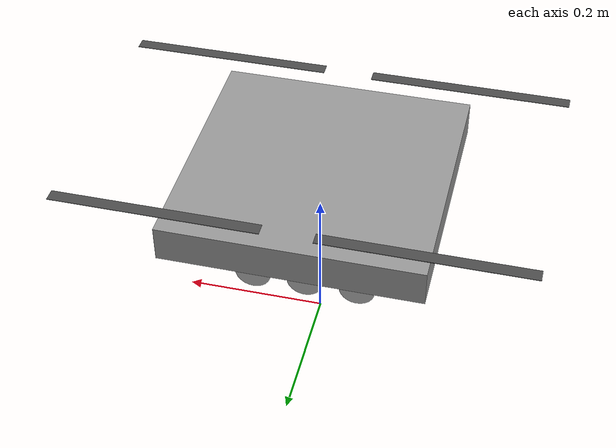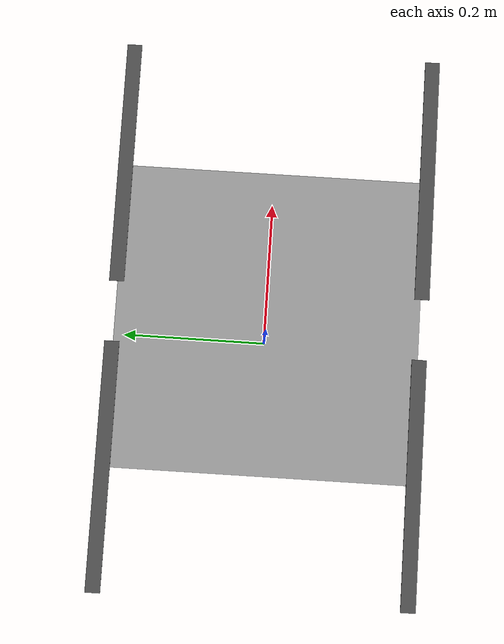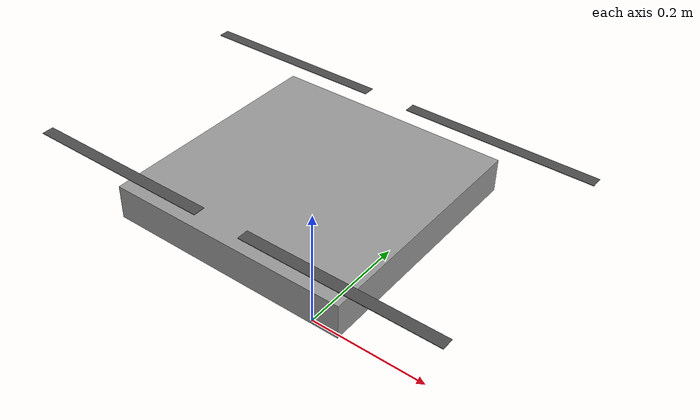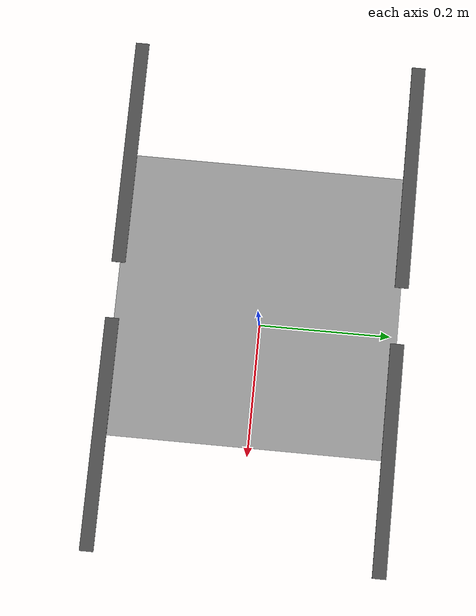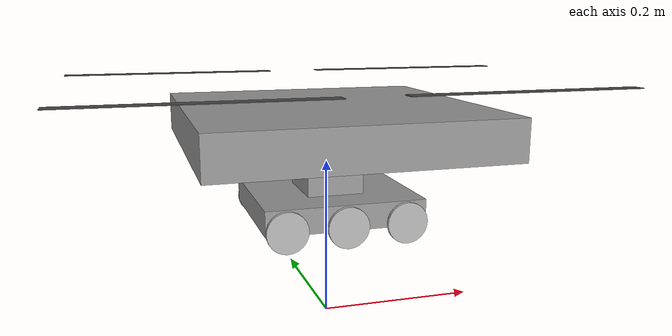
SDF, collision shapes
<?xml version="1.0" encoding="UTF-8"?>
<sdf version='1.9'>
  <model name='x500_custom'>
    <include merge='true'>
      <uri>model://x500_base_custom</uri>
    </include>
    <plugin filename="gz-sim-multicopter-motor-model-system"
      name="gz::sim::systems::MulticopterMotorModel">
      <jointName>rotor_0_joint</jointName>
      <linkName>rotor_0</linkName>
      <turningDirection>ccw</turningDirection>
      <timeConstantUp>0.0125</timeConstantUp>
      <timeConstantDown>0.025</timeConstantDown>
      <maxRotVelocity>1000.0</maxRotVelocity>
      <motorConstant>8.54858e-06</motorConstant>
      <momentConstant>0.016</momentConstant>
      <commandSubTopic>command/motor_speed</commandSubTopic>
      <motorNumber>0</motorNumber>
      <rotorDragCoefficient>8.06428e-05</rotorDragCoefficient>
      <rollingMomentCoefficient>1e-06</rollingMomentCoefficient>
      <rotorVelocitySlowdownSim>10</rotorVelocitySlowdownSim>
      <motorType>velocity</motorType>
    </plugin>
    <plugin filename="gz-sim-multicopter-motor-model-system"
      name="gz::sim::systems::MulticopterMotorModel">
      <jointName>rotor_1_joint</jointName>
      <linkName>rotor_1</linkName>
      <turningDirection>ccw</turningDirection>
      <timeConstantUp>0.0125</timeConstantUp>
      <timeConstantDown>0.025</timeConstantDown>
      <maxRotVelocity>1000.0</maxRotVelocity>
      <motorConstant>8.54858e-06</motorConstant>
      <momentConstant>0.016</momentConstant>
      <commandSubTopic>command/motor_speed</commandSubTopic>
      <motorNumber>1</motorNumber>
      <rotorDragCoefficient>8.06428e-05</rotorDragCoefficient>
      <rollingMomentCoefficient>1e-06</rollingMomentCoefficient>
      <rotorVelocitySlowdownSim>10</rotorVelocitySlowdownSim>
      <motorType>velocity</motorType>
    </plugin>
    <plugin filename="gz-sim-multicopter-motor-model-system"
      name="gz::sim::systems::MulticopterMotorModel">
      <jointName>rotor_2_joint</jointName>
      <linkName>rotor_2</linkName>
      <turningDirection>cw</turningDirection>
      <timeConstantUp>0.0125</timeConstantUp>
      <timeConstantDown>0.025</timeConstantDown>
      <maxRotVelocity>1000.0</maxRotVelocity>
      <motorConstant>8.54858e-06</motorConstant>
      <momentConstant>0.016</momentConstant>
      <commandSubTopic>command/motor_speed</commandSubTopic>
      <motorNumber>2</motorNumber>
      <rotorDragCoefficient>8.06428e-05</rotorDragCoefficient>
      <rollingMomentCoefficient>1e-06</rollingMomentCoefficient>
      <rotorVelocitySlowdownSim>10</rotorVelocitySlowdownSim>
      <motorType>velocity</motorType>
    </plugin>
    <plugin filename="gz-sim-multicopter-motor-model-system"
      name="gz::sim::systems::MulticopterMotorModel">
      <jointName>rotor_3_joint</jointName>
      <linkName>rotor_3</linkName>
      <turningDirection>cw</turningDirection>
      <timeConstantUp>0.0125</timeConstantUp>
      <timeConstantDown>0.025</timeConstantDown>
      <maxRotVelocity>1000.0</maxRotVelocity>
      <motorConstant>8.54858e-06</motorConstant>
      <momentConstant>0.016</momentConstant>
      <commandSubTopic>command/motor_speed</commandSubTopic>
      <motorNumber>3</motorNumber>
      <rotorDragCoefficient>8.06428e-05</rotorDragCoefficient>
      <rollingMomentCoefficient>1e-06</rollingMomentCoefficient>
      <rotorVelocitySlowdownSim>10</rotorVelocitySlowdownSim>
      <motorType>velocity</motorType>
    </plugin>
  </model>
</sdf>

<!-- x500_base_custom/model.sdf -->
<sdf version='1.9'>
  <model name='x500_base_custom'>
    <pose>0 0 .24 0 0 0</pose>
    <self_collide>false</self_collide>
    <static>false</static>
    <link name="base_link">
      <inertial>
        <mass>2.0</mass>
        <inertia>
          <ixx>0.02166666666666667</ixx>
          <ixy>0</ixy>
          <ixz>0</ixz>
          <iyy>0.02166666666666667</iyy>
          <iyz>0</iyz>
          <izz>0.04000000000000001</izz>
        </inertia>
      </inertial>
      <gravity>true</gravity>
      <velocity_decay />
      <visual name="base_link_visual">
        <pose>0.21 -0.21 -0.133 0 0 1.570796327</pose>
        <geometry>
          <mesh>
            <scale>1 1 1</scale>
            <uri>model://x500_base_custom/meshes/Holybro_X500_V2_UPbattery.STL</uri>
          </mesh>
        </geometry>
        <material>
          <script>
            <uri>file://media/materials/scripts/gazebo.material</uri>
            <name>Gazebo/Grey</name>
          </script>
        </material>
      </visual>
      <visual name="5010_motor_base_0">
        <pose>0.174 0.174 .032 0 0 -.45</pose>
        <geometry>
          <mesh>
            <scale>1 1 1</scale>
            <uri>model://x500_base_custom/meshes/5010Base.dae</uri>
          </mesh>
        </geometry>
      </visual>
      <visual name="5010_motor_base_1">
        <pose>-0.174 0.174 .032 0 0 -.45</pose>
        <geometry>
          <mesh>
            <scale>1 1 1</scale>
            <uri>model://x500_base_custom/meshes/5010Base.dae</uri>
          </mesh>
        </geometry>
      </visual>
      <visual name="5010_motor_base_2">
        <pose>0.174 -0.174 .032 0 0 -.45</pose>
        <geometry>
          <mesh>
            <scale>1 1 1</scale>
            <uri>model://x500_base_custom/meshes/5010Base.dae</uri>
          </mesh>
        </geometry>
      </visual>
      <visual name="5010_motor_base_3">
        <pose>-0.174 -0.174 .032 0 0 -.45</pose>
        <geometry>
          <mesh>
            <scale>1 1 1</scale>
            <uri>model://x500_base_custom/meshes/5010Base.dae</uri>
          </mesh>
        </geometry>
      </visual>
      <visual name="NXP_FMUK66_FRONT">
        <pose>0.047 .001 .043 1 0 1.57</pose>
        <cast_shadows>false</cast_shadows>
        <geometry>
          <plane>
            <normal>0 0 1</normal>
            <size>.013 .007</size>
          </plane>
        </geometry>
        <material>
          <diffuse>1.0 1.0 1.0</diffuse>
          <specular>1.0 1.0 1.0</specular>
          <pbr>
            <metal>
              <albedo_map>model://x500_base_custom/materials/textures/nxp.png</albedo_map>
            </metal>
          </pbr>
        </material>
      </visual>
      <visual name="NXP_FMUK66_TOP">
        <pose>-0.023 0 .0515 0 0 -1.57</pose>
        <cast_shadows>false</cast_shadows>
        <geometry>
          <plane>
            <normal>0 0 1</normal>
            <size>.013 .007</size>
          </plane>
        </geometry>
        <material>
          <diffuse>1.0 1.0 1.0</diffuse>
          <specular>1.0 1.0 1.0</specular>
          <pbr>
            <metal>
              <albedo_map>model://x500_base_custom/materials/textures/nxp.png</albedo_map>
            </metal>
          </pbr>
        </material>
      </visual>
      <visual name="RDDRONE_FMUK66_TOP">
        <pose>-.03 0 .0515 0 0 -1.57</pose>
        <cast_shadows>false</cast_shadows>
        <geometry>
          <plane>
            <normal>0 0 1</normal>
            <size>.032 .0034</size>
          </plane>
        </geometry>
        <material>
          <diffuse>1.0 1.0 1.0</diffuse>
          <specular>1.0 1.0 1.0</specular>
          <pbr>
            <metal>
              <albedo_map>model://x500_base_custom/materials/textures/rd.png</albedo_map>
            </metal>
          </pbr>
        </material>
      </visual>
      <collision name="base_link_collision_0">
        <pose>0 0 .007 0 0 0</pose>
        <geometry>
          <box>
            <size>0.35355339059327373 0.35355339059327373 0.05</size>
          </box>
        </geometry>
        <surface>
          <contact>
            <ode>
              <min_depth>0.001</min_depth>
              <max_vel>0</max_vel>
            </ode>
          </contact>
          <friction>
            <ode />
          </friction>
        </surface>
      </collision>
      <collision name="base_link_collision_1">
          <pose>0 0 -0.0465 0 0 0</pose>
          <geometry>
            <box>
              <size>0.07 0.08 0.057</size>
            </box>
          </geometry>
          <surface>
            <contact>
              <ode>
                <min_depth>0.001</min_depth>
                <max_vel>0</max_vel>
              </ode>
            </contact>
            <friction>
              <ode />
            </friction>
          </surface>
        </collision>
        <collision name="base_link_collision_2">
          <pose>0 0 -0.0905 0 0 0</pose>
          <geometry>
            <box>
              <size>0.196 0.175 0.031</size>
            </box>
          </geometry>
          <surface>
            <contact>
              <ode>
                <min_depth>0.001</min_depth>
                <max_vel>0</max_vel>
              </ode>
            </contact>
            <friction>
              <ode />
            </friction>
          </surface>
        </collision>
      <sensor name="air_pressure_sensor" type="air_pressure">
        <gz_frame_id>base_link</gz_frame_id>
        <always_on>1</always_on>
        <update_rate>50</update_rate>
        <air_pressure>
          <!-- Noise modeled after BMP390 -->
          <pressure>
            <noise type="gaussian">
              <mean>0</mean>
              <stddev>3</stddev>
            </noise>
          </pressure>
        </air_pressure>
      </sensor>
      <sensor name="magnetometer_sensor" type="magnetometer">
        <gz_frame_id>base_link</gz_frame_id>
        <always_on>1</always_on>
        <update_rate>100</update_rate>
        <magnetometer>
          <!-- TODO: update to fix units and coordinate system when we move past Harmonic -->
          <!-- See https://github.com/gazebosim/gz-sim/pull/2460 -->
          <!-- 3mgauss RMS: NOTE: noise is in tesla but sensor reports data in gauss -->
          <!-- Noise modeled after IIS2MDC -->
          <x>
            <noise type="gaussian">
              <stddev>0.0001</stddev>
            </noise>
          </x>
          <y>
            <noise type="gaussian">
              <stddev>0.0001</stddev>
            </noise>
          </y>
          <z>
            <noise type="gaussian">
              <stddev>0.0001</stddev>
            </noise>
          </z>
        </magnetometer>
      </sensor>
      <sensor name="imu_sensor" type="imu">
        <gz_frame_id>base_link</gz_frame_id>
        <always_on>1</always_on>
        <update_rate>250</update_rate>
        <imu>
          <angular_velocity>
            <!-- Noise modeled after IIM42653 -->
            <!-- 0.05 deg/s converted to rad/s -->
            <x>
              <noise type="gaussian">
                <mean>0.0</mean>
                <stddev>0.0008726646</stddev>
              </noise>
            </x>
            <y>
              <noise type="gaussian">
                <mean>0.0</mean>
                <stddev>0.0008726646</stddev>
              </noise>
            </y>
            <z>
              <noise type="gaussian">
                <mean>0.0</mean>
                <stddev>0.0008726646</stddev>
              </noise>
            </z>
          </angular_velocity>
          <linear_acceleration>
            <!-- Noise modeled after IIM42653 -->
            <!-- X & Y axis: 0.65 mg-rms converted to m/ss -->
            <x>
              <noise type="gaussian">
                <mean>0.0</mean>
                <stddev>0.00637</stddev>
              </noise>
            </x>
            <y>
              <noise type="gaussian">
                <mean>0.0</mean>
                <stddev>0.00637</stddev>
              </noise>
            </y>
            <!-- Z axis: 0.70 mg-rms converted to m/ss-->
            <z>
              <noise type="gaussian">
                <mean>0.0</mean>
                <stddev>0.00686</stddev>
              </noise>
            </z>
          </linear_acceleration>
        </imu>
      </sensor>
      <sensor name="navsat_sensor" type="navsat">
        <gz_frame_id>base_link</gz_frame_id>
        <always_on>1</always_on>
        <update_rate>30</update_rate>
      </sensor>
    </link>
    <link name="rotor_0">
      <gravity>true</gravity>
      <self_collide>false</self_collide>
      <velocity_decay />
      <pose>0.174 -0.174 0.06 0 0 0</pose>
      <inertial>
        <mass>0.016076923076923075</mass>
        <inertia>
          <ixx>3.8464910483993325e-07</ixx>
          <iyy>2.6115851691700804e-05</iyy>
          <izz>2.649858234714004e-05</izz>
        </inertia>
      </inertial>
      <visual name="rotor_0_visual">
        <pose>-0.022 -0.14638461538461536 -0.016 0 0 0</pose>
        <geometry>
          <mesh>
            <scale>0.8461538461538461 0.8461538461538461 0.8461538461538461</scale>
            <uri>model://x500_base_custom/meshes/1345_prop_ccw.stl</uri>
          </mesh>
        </geometry>
        <material>
          <script>
            <name>Gazebo/DarkGrey</name>
            <uri>file://media/materials/scripts/gazebo.material</uri>
          </script>
        </material>
      </visual>
      <visual name="rotor_0_visual_motor_bell">
        <pose>0 0 -.032 0 0 0</pose>
        <geometry>
          <mesh>
            <scale>1 1 1</scale>
            <uri>model://x500_base_custom/meshes/5010Bell.dae</uri>
          </mesh>
        </geometry>
      </visual>
      <collision name="rotor_0_collision">
        <pose>0 0 0 0 0 0 </pose>
        <geometry>
          <box>
            <size>0.2792307692307692 0.016923076923076923 0.0008461538461538462</size>
          </box>
        </geometry>
        <surface>
          <contact>
            <ode>
              <min_depth>0.001</min_depth>
              <max_vel>0</max_vel>
            </ode>
          </contact>
          <friction>
            <ode />
          </friction>
        </surface>
      </collision>
    </link>
    <joint name="rotor_0_joint" type="revolute">
      <parent>base_link</parent>
      <child>rotor_0</child>
      <axis>
        <xyz>0 0 1</xyz>
        <limit>
          <lower>-1e+16</lower>
          <upper>1e+16</upper>
        </limit>
        <dynamics>
          <spring_reference>0</spring_reference>
          <spring_stiffness>0</spring_stiffness>
        </dynamics>
      </axis>
    </joint>
    <link name="rotor_1">
      <gravity>true</gravity>
      <self_collide>false</self_collide>
      <velocity_decay />
      <pose>-0.174 0.174 0.06 0 0 0</pose>
      <inertial>
        <mass>0.016076923076923075</mass>
        <inertia>
          <ixx>3.8464910483993325e-07</ixx>
          <iyy>2.6115851691700804e-05</iyy>
          <izz>2.649858234714004e-05</izz>
        </inertia>
      </inertial>
      <visual name="rotor_1_visual">
        <pose>-0.022 -0.14638461538461536 -0.016 0 0 0</pose>
        <geometry>
          <mesh>
            <scale>0.8461538461538461 0.8461538461538461 0.8461538461538461</scale>
            <uri>model://x500_base_custom/meshes/1345_prop_ccw.stl</uri>
          </mesh>
        </geometry>
        <material>
          <script>
            <name>Gazebo/DarkGrey</name>
            <uri>file://media/materials/scripts/gazebo.material</uri>
          </script>
        </material>
      </visual>
      <visual name="rotor_1_visual_motor_top">
        <pose>0 0 -.032 0 0 0</pose>
        <geometry>
          <mesh>
            <scale>1 1 1</scale>
            <uri>model://x500_base_custom/meshes/5010Bell.dae</uri>
          </mesh>
        </geometry>
      </visual>
      <collision name="rotor_1_collision">
        <pose>0 0 0 0 0 0 </pose>
        <geometry>
          <box>
            <size>0.2792307692307692 0.016923076923076923 0.0008461538461538462</size>
          </box>
        </geometry>
        <surface>
          <contact>
            <ode>
              <min_depth>0.001</min_depth>
              <max_vel>0</max_vel>
            </ode>
          </contact>
          <friction>
            <ode />
          </friction>
        </surface>
      </collision>
    </link>
    <joint name="rotor_1_joint" type="revolute">
      <parent>base_link</parent>
      <child>rotor_1</child>
      <axis>
        <xyz>0 0 1</xyz>
        <limit>
          <lower>-1e+16</lower>
          <upper>1e+16</upper>
        </limit>
        <dynamics>
          <spring_reference>0</spring_reference>
          <spring_stiffness>0</spring_stiffness>
        </dynamics>
      </axis>
    </joint>
    <link name="rotor_2">
      <gravity>true</gravity>
      <self_collide>false</self_collide>
      <velocity_decay />
      <pose>0.174 0.174 0.06 0 0 0</pose>
      <inertial>
        <mass>0.016076923076923075</mass>
        <inertia>
          <ixx>3.8464910483993325e-07</ixx>
          <iyy>2.6115851691700804e-05</iyy>
          <izz>2.649858234714004e-05</izz>
        </inertia>
      </inertial>
      <visual name="rotor_2_visual">
        <pose>-0.022 -0.14638461538461536 -0.016 0 0 0</pose>
        <geometry>
          <mesh>
            <scale>0.8461538461538461 0.8461538461538461 0.8461538461538461</scale>
            <uri>model://x500_base_custom/meshes/1345_prop_cw.stl</uri>
          </mesh>
        </geometry>
        <material>
          <script>
            <name>Gazebo/DarkGrey</name>
            <uri>file://media/materials/scripts/gazebo.material</uri>
          </script>
        </material>
      </visual>
      <visual name="rotor_2_visual_motor_top">
        <pose>0 0 -.032 0 0 0</pose>
        <geometry>
          <mesh>
            <scale>1 1 1</scale>
            <uri>model://x500_base_custom/meshes/5010Bell.dae</uri>
          </mesh>
        </geometry>
      </visual>
      <collision name="rotor_2_collision">
        <pose>0 0 0 0 0 0 </pose>
        <geometry>
          <box>
            <size>0.2792307692307692 0.016923076923076923 0.0008461538461538462</size>
          </box>
        </geometry>
        <surface>
          <contact>
            <ode>
              <min_depth>0.001</min_depth>
              <max_vel>0</max_vel>
            </ode>
          </contact>
          <friction>
            <ode />
          </friction>
        </surface>
      </collision>
    </link>
    <joint name="rotor_2_joint" type="revolute">
      <parent>base_link</parent>
      <child>rotor_2</child>
      <axis>
        <xyz>0 0 1</xyz>
        <limit>
          <lower>-1e+16</lower>
          <upper>1e+16</upper>
        </limit>
        <dynamics>
          <spring_reference>0</spring_reference>
          <spring_stiffness>0</spring_stiffness>
        </dynamics>
      </axis>
    </joint>
    <link name="rotor_3">
      <gravity>true</gravity>
      <self_collide>false</self_collide>
      <velocity_decay />
      <pose>-0.174 -0.174 0.06 0 0 0</pose>
      <inertial>
        <mass>0.016076923076923075</mass>
        <inertia>
          <ixx>3.8464910483993325e-07</ixx>
          <iyy>2.6115851691700804e-05</iyy>
          <izz>2.649858234714004e-05</izz>
        </inertia>
      </inertial>
      <visual name="rotor_3_visual">
        <pose>-0.022 -0.14638461538461536 -0.016 0 0 0</pose>
        <geometry>
          <mesh>
            <scale>0.8461538461538461 0.8461538461538461 0.8461538461538461</scale>
            <uri>model://x500_base_custom/meshes/1345_prop_cw.stl</uri>
          </mesh>
        </geometry>
        <material>
          <script>
            <name>Gazebo/DarkGrey</name>
            <uri>file://media/materials/scripts/gazebo.material</uri>
          </script>
        </material>
      </visual>
      <visual name="rotor_3_visual_motor_top">
        <pose>0 0 -.032 0 0 0</pose>
        <geometry>
          <mesh>
            <scale>1 1 1</scale>
            <uri>model://x500_base_custom/meshes/5010Bell.dae</uri>
          </mesh>
        </geometry>
      </visual>
      <collision name="rotor_3_collision">
        <pose>0 0 0 0 0 0 </pose>
        <geometry>
          <box>
            <size>0.2792307692307692 0.016923076923076923 0.0008461538461538462</size>
          </box>
        </geometry>
        <surface>
          <contact>
            <ode>
              <min_depth>0.001</min_depth>
              <max_vel>0</max_vel>
            </ode>
          </contact>
          <friction>
            <ode />
          </friction>
        </surface>
      </collision>
    </link>
    <joint name="rotor_3_joint" type="revolute">
      <parent>base_link</parent>
      <child>rotor_3</child>
      <axis>
        <xyz>0 0 1</xyz>
        <limit>
          <lower>-1e+16</lower>
          <upper>1e+16</upper>
        </limit>
        <dynamics>
          <spring_reference>0</spring_reference>
          <spring_stiffness>0</spring_stiffness>
        </dynamics>
      </axis>
    </joint>
    <link name="wheel_right_0">

      <pose>0 0.091 -0.101 1.570796327 0 0</pose>

      <gravity>true</gravity>
      <self_collide>false</self_collide>
      <velocity_decay/>

      <inertial>
        <mass>0.1</mass>
        <inertia>
          <ixx>1.9e-05</ixx>
          <ixy>0</ixy>
          <ixz>0</ixz>
          <iyy>3.1e-05</iyy>
          <iyz>0</iyz>
          <izz>1.9e-05</izz>
        </inertia>
      </inertial>

      <collision name="wheel_right_0_collision">
        <pose>0 0 0 0 0 0</pose>
        <geometry>
          <cylinder>
            <radius>0.025</radius>
            <length>0.005</length>
          </cylinder>
        </geometry>
        <surface>
          <contact>
            <ode>
              <min_depth>0.001</min_depth>
              <max_vel>0</max_vel>
            </ode>
          </contact>
          <friction>
            <ode/>
          </friction>
        </surface>
      </collision>
    </link>
    <joint name="wheel_right_0_joint" type="revolute">
      <parent>base_link</parent>
      <child>wheel_right_0</child>
      <axis>
        <xyz>0 0 1</xyz> <!-- ציר הסיבוב (Z = מסתובב כמו גלגל אמיתי) -->
        <limit>
          <lower>-1e16</lower>
          <upper>1e16</upper>
        </limit>
      </axis>
    </joint>
    <link name="wheel_right_1">
      <pose>0.073 0.091 -0.101 1.570796327 0 0</pose>

      <gravity>true</gravity>
      <self_collide>false</self_collide>
      <velocity_decay/>

      <inertial>
        <mass>0.1</mass>
        <inertia>
          <ixx>1.9e-05</ixx>
          <ixy>0</ixy>
          <ixz>0</ixz>
          <iyy>3.1e-05</iyy>
          <iyz>0</iyz>
          <izz>1.9e-05</izz>
        </inertia>
      </inertial>
      <collision name="wheel_right_1_collision">
        <pose>0 0 0 0 0 0</pose>
        <geometry>
          <cylinder>
            <radius>0.025</radius>
            <length>0.005</length>
          </cylinder>
        </geometry>
        <surface>
          <contact>
            <ode>
              <min_depth>0.001</min_depth>
              <max_vel>0</max_vel>
            </ode>
          </contact>
          <friction>
            <ode/>
          </friction>
        </surface>
      </collision>
    </link>
    <joint name="wheel_right_1_joint" type="revolute">
      <parent>base_link</parent>
      <child>wheel_right_1</child>
      <axis>
        <xyz>0 0 1</xyz>
        <limit>
          <lower>-1e16</lower>
          <upper>1e16</upper>
        </limit>
      </axis>
    </joint>
    <link name="wheel_right_2">
      <pose>-0.073 0.091 -0.101 1.570796327 0 0</pose>

      <gravity>true</gravity>
      <self_collide>false</self_collide>
      <velocity_decay/>

      <inertial>
        <mass>0.1</mass>
        <inertia>
          <ixx>1.9e-05</ixx>
          <ixy>0</ixy>
          <ixz>0</ixz>
          <iyy>3.1e-05</iyy>
          <iyz>0</iyz>
          <izz>1.9e-05</izz>
        </inertia>
      </inertial>
      <collision name="wheel_right_2_collision">
        <pose>0 0 0 0 0 0</pose>
        <geometry>
          <cylinder>
            <radius>0.025</radius>
            <length>0.005</length>
          </cylinder>
        </geometry>
        <surface>
          <contact>
            <ode>
              <min_depth>0.001</min_depth>
              <max_vel>0</max_vel>
            </ode>
          </contact>
          <friction>
            <ode/>
          </friction>
        </surface>
      </collision>
    </link>
    <joint name="wheel_right_2_joint" type="revolute">
      <parent>base_link</parent>
      <child>wheel_right_2</child>
      <axis>
        <xyz>0 0 1</xyz>
        <limit>
          <lower>-1e16</lower>
          <upper>1e16</upper>
        </limit>
      </axis>
    </joint>
    <link name="wheel_left_0">

      <pose>0 -0.091 -0.101 1.570796327 0 0</pose>

      <gravity>true</gravity>
      <self_collide>false</self_collide>
      <velocity_decay/>

      <inertial>
        <mass>0.1</mass>
        <inertia>
          <ixx>1.9e-05</ixx>
          <ixy>0</ixy>
          <ixz>0</ixz>
          <iyy>3.1e-05</iyy>
          <iyz>0</iyz>
          <izz>1.9e-05</izz>
        </inertia>
      </inertial>

      <collision name="wheel_left_0_collision">
        <pose>0 0 0 0 0 0</pose>
        <geometry>
          <cylinder>
            <radius>0.025</radius>
            <length>0.005</length>
          </cylinder>
        </geometry>
        <surface>
          <contact>
            <ode>
              <min_depth>0.001</min_depth>
              <max_vel>0</max_vel>
            </ode>
          </contact>
          <friction>
            <ode/>
          </friction>
        </surface>
      </collision>
    </link>
    <joint name="wheel_left_0_joint" type="revolute">
      <parent>base_link</parent>
      <child>wheel_left_0</child>
      <axis>
        <xyz>0 0 1</xyz>
        <limit>
          <lower>-1e16</lower>
          <upper>1e16</upper>
        </limit>
      </axis>
    </joint>
    <link name="wheel_left_1">
      <pose>0.073 -0.091 -0.101 1.570796327 0 0</pose>

      <gravity>true</gravity>
      <self_collide>false</self_collide>
      <velocity_decay/>

      <inertial>
        <mass>0.1</mass>
        <inertia>
          <ixx>1.9e-05</ixx>
          <ixy>0</ixy>
          <ixz>0</ixz>
          <iyy>3.1e-05</iyy>
          <iyz>0</iyz>
          <izz>1.9e-05</izz>
        </inertia>
      </inertial>
      <collision name="wheel_left_1_collision">
        <pose>0 0 0 0 0 0</pose>
        <geometry>
          <cylinder>
            <radius>0.025</radius>
            <length>0.005</length>
          </cylinder>
        </geometry>
        <surface>
          <contact>
            <ode>
              <min_depth>0.001</min_depth>
              <max_vel>0</max_vel>
            </ode>
          </contact>
          <friction>
            <ode/>
          </friction>
        </surface>
      </collision>
    </link>
    <joint name="wheel_left_1_joint" type="revolute">
      <parent>base_link</parent>
      <child>wheel_left_1</child>
      <axis>
        <xyz>0 0 1</xyz>
        <limit>
          <lower>-1e16</lower>
          <upper>1e16</upper>
        </limit>
      </axis>
    </joint>
    <link name="wheel_left_2">
      <pose>-0.073 -0.091 -0.101 1.570796327 0 0</pose>

      <gravity>true</gravity>
      <self_collide>false</self_collide>
      <velocity_decay/>

      <inertial>
        <mass>0.1</mass>
        <inertia>
          <ixx>1.9e-05</ixx>
          <ixy>0</ixy>
          <ixz>0</ixz>
          <iyy>3.1e-05</iyy>
          <iyz>0</iyz>
          <izz>1.9e-05</izz>
        </inertia>
      </inertial>
      <collision name="wheel_left_2_collision">
        <pose>0 0 0 0 0 0</pose>
        <geometry>
          <cylinder>
            <radius>0.025</radius>
            <length>0.005</length>
          </cylinder>
        </geometry>
        <surface>
          <contact>
            <ode>
              <min_depth>0.001</min_depth>
              <max_vel>0</max_vel>
            </ode>
          </contact>
          <friction>
            <ode/>
          </friction>
        </surface>
      </collision>
    </link>
    <joint name="wheel_left_2_joint" type="revolute">
      <parent>base_link</parent>
      <child>wheel_left_2</child>
      <axis>
        <xyz>0 0 1</xyz>
        <limit>
          <lower>-1e16</lower>
          <upper>1e16</upper>
        </limit>
      </axis>
    </joint>

    <plugin name="gz::sim::systems::DiffDrive"
        filename="libgz-sim-diff-drive-system.so">

        <!-- שלושת הג'וינטים של צד שמאל -->
        <left_joint>wheel_left_0_joint</left_joint>
        <left_joint>wheel_left_1_joint</left_joint>
        <left_joint>wheel_left_2_joint</left_joint>

        <!-- שלושת הג'וינטים של צד ימין -->
        <right_joint>wheel_right_0_joint</right_joint>
        <right_joint>wheel_right_1_joint</right_joint>
        <right_joint>wheel_right_2_joint</right_joint>

        <!-- פרמטרים גיאומטריים -->
        <wheel_radius>0.025</wheel_radius>
        <wheel_separation>0.0182</wheel_separation>

        <!-- הגבלות מהירות (לא חובה אבל נחמד) -->
        <max_linear_speed>1.0</max_linear_speed>
        <max_angular_speed>1.0</max_angular_speed>

        <!-- שם הטופיק שבו הפלאגין יקשיב לפקודות -->
        <topic>cmd_vel</topic>
    </plugin>

  </model>
</sdf>
